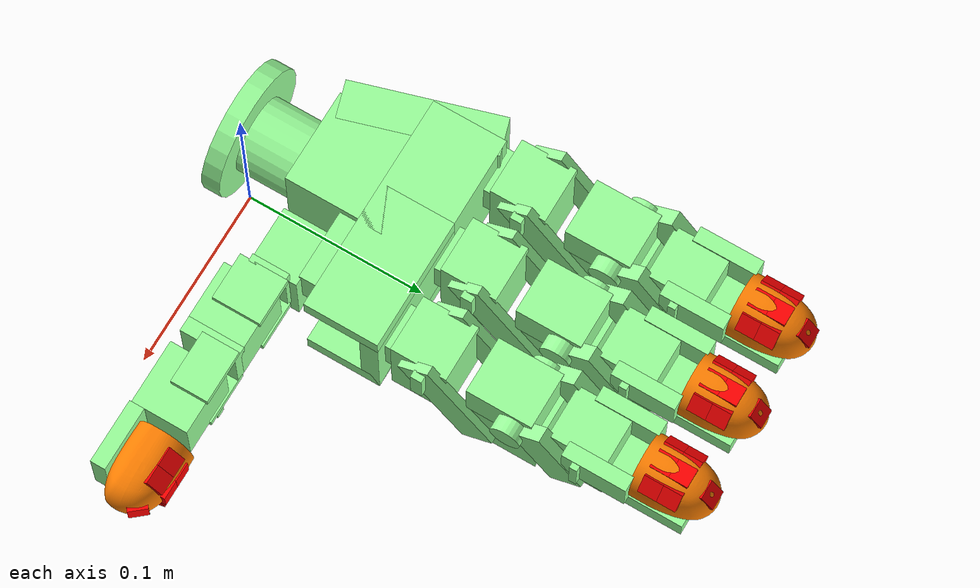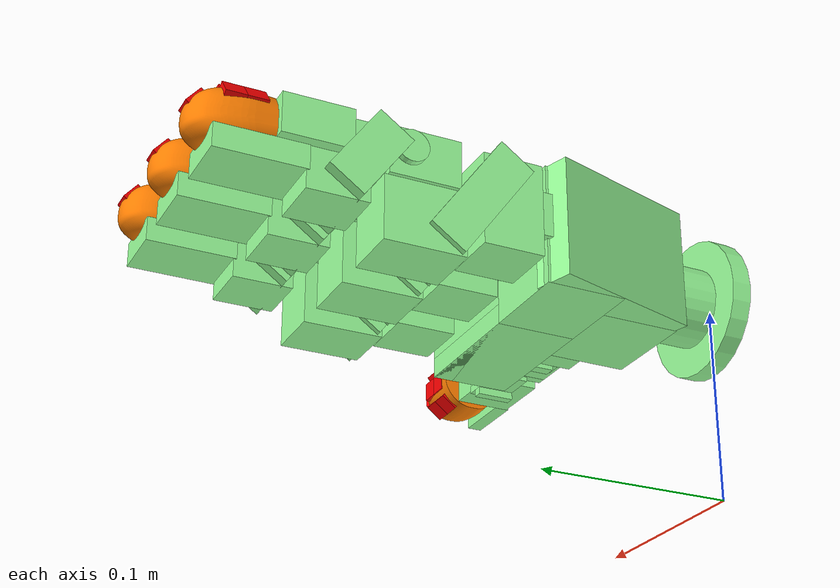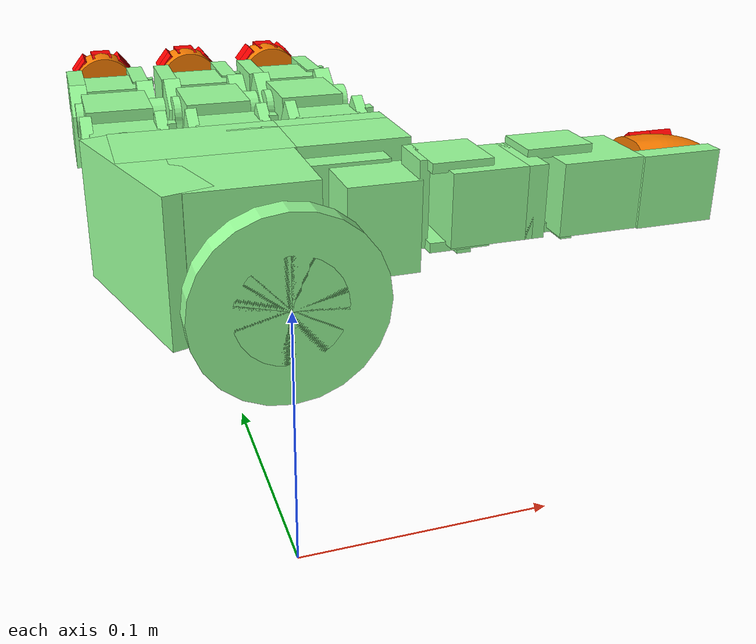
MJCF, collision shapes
<?xml version="1.0" ?>
<!-- Generated using onshape-to-robot -->
<!-- Onshape https://cad.onshape.com/documents/8570a76a8c0c31c84724c6f7/w/72ba6e2072d2b92f117e67a0/e/b5b8d162590c6484df5b91e8 -->
<mujoco model="leapXELA">
  <compiler angle="radian" meshdir="./assets/"/>
  <option integrator="implicitfast" cone="elliptic" impratio="100"/>

  <!-- mesh assets -->
  <asset>
    <material name="black" rgba="0.2 0.2 0.2 1" />
    <material name="col" rgba="0.6 1.0 0.6 0.2" />
    <material name="orange" rgba="1.0 0.5 0.0 0.2" />
    <material name="marker" rgba="1.0 0.0 0.0 1.0" />

    <mesh file="outer_skin_v1_3_1.stl"/>
    <mesh file="thfingertip_unified.stl"/>
    <mesh file="leap_hand_xela_bottom.stl"/>
    <mesh file="p2_unified.stl"/>
    <mesh file="fingertop_unfied.stl"/>
    <mesh file="thp2_unified.stl"/>
    <mesh file="leap_hand_xela_motorholder.stl"/>
    <mesh file="uspa46.stl"/>
    <mesh file="thp0_unified.stl"/>
    <mesh file="p3_unified.stl"/>
    <mesh file="clipper.stl"/>
    <mesh file="thp1_unified.stl"/>
    <mesh file="leap_hand_xela_side_cover.stl"/>
    <mesh file="thconnector.stl"/>
    <mesh file="p5_unified.stl"/>
    <mesh file="top_palm.stl"/>
    <mesh file="p4_unified.stl"/>
    <mesh file="palm_face.stl"/>
    <mesh file="leap_hand_xela_back_cover.stl"/>
  </asset>

  <!-- defaults -->
  <default>
    <!-- constraint stiffness -->
    <geom solimp="0.999 0.999 0.001 0.0001 1" solref="0.0001 1" friction=".2"/>

    <!-- actuator defaults -->
    <position kp="3.0" kv="0.01" />
    <joint damping="0.03" frictionloss="0.001"/>

    <!-- geom class defaults -->
    <default class="visual">
      <geom type="mesh" contype="0" conaffinity="0" group="2"/>
    </default>

    <default class="collision">
      <geom type="box" group="3" material="col"/>
      <default class="sensor_patch">
        <geom rgba ="1 0 0 1" size="0.005 0.005 0.005" group="4"/>
        <!-- Sensor Location Fingertips -->
        <!-- Top Surface -->
        <default class="fingertip_sensor_top_surface_1">
          <geom pos="0.01 -0.035 0.0145" euler="0 0 0" />
        </default>
        <default class="fingertip_sensor_top_surface_2">
          <geom pos="0.0100 -0.045 0.0145" euler="0 0 0" />
        </default>
        <default class="fingertip_sensor_top_surface_3">
          <geom pos="0.004 -0.057 0.0145" euler="0 0 0.7" />
        </default>
        <!-- End:Top Surface -->
        <!-- Left Surface -->
        <default class="fingertip_sensor_left_surface_1">
          <geom pos="0.007 -0.035 0.023" euler="0 -0.9 0" />
        </default>
        <default class="fingertip_sensor_left_surface_2">
          <geom pos="0.007 -0.045 0.023" euler="0 -0.9 0" />
        </default>
        <!-- End:Left Surface -->
        <!-- Right Surface -->
        <default class="fingertip_sensor_right_surface_1">
          <geom pos="0.007 -0.035 0.006" euler="0 0.9 0" />
        </default>
        <default class="fingertip_sensor_right_surface_2">
          <geom pos="0.007 -0.045 0.006" euler="0 0.9 0" />
        </default>
        <!-- End:Right Surface -->
      </default>
    </default>

    <!-- marker defaults-->
    <default class="marker">
      <site size="0.005" pos="-0.004 -0.062 0.015" group="5"/>
    </default>

    <!-- touch grid palm -->
    <default class="uspa46">
      <site group="4" size="0.001" />
    </default>
    <!-- touch grid finger links -->
    <default class="uspa44">
      <site group="4" size="0.001" />
      <default class="bs_uspa44">
        <geom pos="-0.0022 0.005 -0.015"  />
        <site pos="0.0088 0.015 -0.004" />
      </default>
      <default class="px_uspa44">
        <geom pos="0.00 0.012 0.017"  />
        <site pos="0.006 0.020 0.028" />
      </default>
      <default class="md_uspa44">
        <geom pos="0.0322 0.005 -0.015"  />
        <site pos="0.040 0.015 -0.008" />
      </default>

      <default class="th_bs_uspa44">
        <geom pos="0.0 0.004 0.026"/>
        <site pos="0.007 0.015 0.035"/>
      </default>
      <default class="th_px_uspa44">
        <geom pos="-0.004 0.053 0.0145"/>
        <site pos="-0.015 0.0605 0.008"/>
      </default>
       <!-- Construction lines for fingertips -->
       <!-- Vertical Construction Line -->
       <default class="construction_line_0">
        <site pos="0.015 -0.025 0.0145"  />
       </default>
       <default class="construction_line_1">
        <site pos="0.015 -0.030 0.0145" />
       </default>
       <default class="construction_line_2">
        <site pos="0.015 -0.035 0.0145" />
       </default>
       <default class="construction_line_3">
        <site pos="0.0148 -0.040 0.0145" />
       </default>
       <default class="construction_line_4">
        <site pos="0.0142 -0.045 0.0145"/>
       </default>
       <default class="construction_line_5">
        <site pos="0.0134 -0.050 0.0145" />
       </default>
       <default class="construction_line_6">
        <site pos="0.0115 -0.055 0.0145"  />
       </default>
       <default class="construction_line_7">
        <site pos="0.008 -0.060 0.0145"  />
       </default>
       <default class="construction_line_8">
        <site  pos="0.004 -0.063 0.0145" />
       </default>
       <default class="construction_line_9">
        <site pos="-0.002 -0.0645 0.0145"/>
       </default>
       <!-- Horizontal Construction Line One -->
      <default class="h1_construction_line_1">
        <site pos="0.014 -0.035 0.02" />
      </default>
      <default class="h1_construction_line_2">
        <site pos="0.011 -0.035 0.025" />
      </default>
      <default class="h1_construction_line_3">
        <site pos="0.005 -0.035 0.029" />
      </default>
      <default class="h1_construction_line_4">
        <site pos="0.00 -0.035 0.03" />
      </default>

      <default class="h1_construction_line_5">
        <site pos="0.014 -0.035 0.008" />
      </default>
      <default class="h1_construction_line_6">
        <site pos="0.011 -0.035 0.004" />
      </default>
      <default class="h1_construction_line_7">
        <site pos="0.005 -0.035 0.000" />
      </default>
      <default class="h1_construction_line_8">
        <site pos="0.00 -0.035 -0.001" />
      </default>
      <!-- Horizontal Construction Line Two -->
      <default class="h2_construction_line_1">
        <site pos="0.013 -0.045 0.02" />
      </default>
      <default class="h2_construction_line_2">
        <site pos="0.01 -0.045 0.025" />
      </default>
      <default class="h2_construction_line_3">
        <site pos="0.002 -0.045 0.029" />
      </default>

      <default class="h2_construction_line_4">
        <site pos="0.013 -0.045 0.008" />
      </default>
      <default class="h2_construction_line_5">
        <site pos="0.01 -0.045 0.004" />
      </default>
      <default class="h2_construction_line_6">
        <site pos="0.002 -0.045 -0.0001" />
      </default>
    </default>

     <!-- touch grid fingertips -->
    <default class="uSCuALHA">
      <geom  group="3" type="mesh" mesh="outer_skin_v1_3_1" pos="-0.0009 -0.025 0.0145"
               euler="-1.57 0 -1.57" friction="0.5" material="orange" />
      <site group="4" pos="0.014 -0.045 0.015" size="0.001" />
    </default>

     <!-- joint class defaults -->
    <default class="mcp">
      <joint pos="0 0 0" axis="0 0 1"
        limited="true" range="-0.314 2.23" />
      <position ctrlrange="-0.314 2.23" />
    </default>
    <default class="rot">
      <joint pos="0 0 0" axis="0 0 1"
        limited="true" range="-1.047 1.047" />
      <position ctrlrange="-1.047 1.047" />
    </default>
    <default class="pip">
      <joint pos="0 0 0" axis="0 0 1"
        limited="true" range="-0.506 1.885" />
      <position ctrlrange="-0.506 1.885" />
    </default>
    <default class="dip">
      <joint pos="0 0 0" axis="0 0 1"
        limited="true" range="-0.366 2.042" />
      <position ctrlrange="-0.366 2.042" />
    </default>
    <default class="thumb_cmc">
      <joint pos="0 0 0" axis="0 0 1"
        limited="true" range="-0.349 2.094" />
      <position ctrlrange="-0.349 2.094" />
    </default>
    <default class="thumb_axl">
      <joint pos="0 0 0" axis="0 0 1"
        limited="true" range="-0.349 2.094" />
      <position ctrlrange="-0.349 2.094" />
    </default>
    <default class="thumb_mcp">
      <joint pos="0 0 0" axis="0 0 1"
        limited="true" range="-0.47 2.443" />
      <position ctrlrange="-0.47 2.443" />
    </default>
    <default class="thumb_ipl">
      <joint pos="0 0 0" axis="0 0 1"
        limited="true" range="-1.34 1.88" />
      <position ctrlrange="-1.34 1.88" />
    </default>
  </default>

  <!-- collision filtering -->
  <contact>
    <exclude body1="palm" body2="if_bs" />
    <exclude body1="palm" body2="mf_bs" />
    <exclude body1="palm" body2="rf_bs" />
    <exclude body1="palm" body2="th_mp" />

    <exclude body1="palm" body2="if_px" />
    <exclude body1="palm" body2="mf_px" />
    <exclude body1="palm" body2="rf_px" />
    <exclude body1="palm" body2="th_bs" />

    <exclude body1="palm" body2="if_md" />
    <exclude body1="palm" body2="mf_md" />
    <exclude body1="palm" body2="rf_md" />
    <exclude body1="palm" body2="th_px" />

    <exclude body1="if_bs" body2="mf_bs" />
    <exclude body1="if_bs" body2="rf_bs" />
    <exclude body1="mf_bs" body2="rf_bs" />

    <exclude body1="th_mp" body2="if_bs" />
    <exclude body1="th_mp" body2="mf_bs" />
    <exclude body1="th_mp" body2="rf_bs" />

    <exclude body1="if_md" body2="if_bs" />
    <exclude body1="mf_md" body2="mf_bs" />
    <exclude body1="rf_md" body2="rf_bs" />
  </contact>

  <!-- actuators -->
  <actuator>
    <!-- index -->
    <position  name="if_mcp_act" joint="if_mcp" class="mcp"/>
    <position  name="if_rot_act" joint="if_rot" class="rot"/>
    <position  name="if_pip_act" joint="if_pip" class="pip"/>
    <position  name="if_dip_act" joint="if_dip" class="dip"/>

    <!-- middle -->
    <position name="mf_mcp_act" joint="mf_mcp" class="mcp"/>
    <position name="mf_rot_act" joint="mf_rot" class="rot"/>
    <position name="mf_pip_act" joint="mf_pip" class="pip"/>
    <position name="mf_dip_act" joint="mf_dip" class="dip"/>

    <!-- ring  -->
    <position name="rf_mcp_act" joint="rf_mcp" class="mcp"/>
    <position name="rf_rot_act" joint="rf_rot" class="rot"/>
    <position name="rf_pip_act" joint="rf_pip" class="pip"/>
    <position name="rf_dip_act" joint="rf_dip" class="dip"/>

    <!-- thumb -->
    <position name="th_cmc_act" joint="th_cmc" class="thumb_cmc"/>
    <position name="th_axl_act" joint="th_axl" class="thumb_axl"/>
    <position name="th_mcp_act" joint="th_mcp" class="thumb_mcp"/>
    <position name="th_ipl_act" joint="th_ipl" class="thumb_ipl"/>
  </actuator>

  <!-- sensors -->
  <sensor>

    <!-- index -->
    <jointpos name="if_mcp_sensor" joint="if_mcp" />
    <jointpos name="if_rot_sensor" joint="if_rot" />
    <jointpos name="if_pip_sensor" joint="if_pip" />
    <jointpos name="if_dip_sensor" joint="if_dip" />

    <!-- middle -->
    <jointpos name="mf_mcp_sensor" joint="mf_mcp" />
    <jointpos name="mf_rot_sensor" joint="mf_rot" />
    <jointpos name="mf_pip_sensor" joint="mf_pip" />
    <jointpos name="mf_dip_sensor" joint="mf_dip" />

    <!-- ring -->
    <jointpos name="rf_mcp_sensor" joint="rf_mcp" />
    <jointpos name="rf_rot_sensor" joint="rf_rot" />
    <jointpos name="rf_pip_sensor" joint="rf_pip" />
    <jointpos name="rf_dip_sensor" joint="rf_dip" />

    <!-- thumb -->
    <jointpos name="th_cmc_sensor" joint="th_cmc" />
    <jointpos name="th_axl_sensor" joint="th_axl" />
    <jointpos name="th_mcp_sensor" joint="th_mcp" />
    <jointpos name="th_ipl_sensor" joint="th_ipl" />

  </sensor>

  <worldbody>
    <body name="palm" pos="0 0 0.1" quat="1 -1 0  0" >
      <!-- palm -->
      <inertial pos="0.00388456 -0.00321858 0.0893448" mass="0.237" fullinertia="0.00587523 0.00767916 0.00348841 9.4314e-05 -0.000410847 0.00018544"/>
      <geom name="palm_visual_1" class="visual" pos="0.0180627 0.023 0.0834096" quat="7.73061e-18 0.707107 0 -0.707107" mesh="leap_hand_xela_motorholder" material="black"/>
      <geom name="palm_visual_2" class="visual" pos="-0.005515 -0.027 0.0631" quat="1.11022e-16 -2.02699e-16 -1.11022e-16 -1" mesh="uspa46" material="black"/>
      <geom name="palm_visual_3" class="visual" pos="0.0235627 -0.013 0.0845" quat="0.707107 -3.84621e-15 -3.66374e-15 0.707107" mesh="thp0_unified" material="black"/>
      <geom name="palm_visual_4" class="visual" pos="-0.03767 -0.009 0.1306" quat="0.5 0.5 -0.5 0.5" mesh="p5_unified" material="black"/>
      <geom name="palm_visual_5" class="visual" pos="0.00785 -0.023 0.123706" quat="5.44009e-15 -4.77641e-18 1 -1.9082e-16" mesh="top_palm" material="black"/>
      <geom name="palm_visual_6" class="visual" pos="0.00778 -0.009 0.1306" quat="0.5 0.5 -0.5 0.5" mesh="p5_unified" material="black"/>
      <geom name="palm_visual_7" class="visual" pos="-0.005515 -0.027 0.0962" quat="1.11022e-16 -2.02699e-16 -1.11022e-16 -1" mesh="uspa46" material="black"/>
      <geom name="palm_visual_8" class="visual" pos="0.05323 -0.009 0.1306" quat="0.5 0.5 -0.5 0.5" mesh="p5_unified" material="black"/>
      <geom name="palm_visual_9" class="visual" pos="0.044015 -0.027 0.0962" quat="1.04466e-17 -1 4.83299e-17 2.02699e-16" mesh="uspa46" material="black"/>
      <geom name="palm_visual_10" class="visual" pos="-0.0293149 0.023 0.131221" quat="0.707107 -2.32148e-18 -0.707107 0" mesh="leap_hand_xela_back_cover" material="black"/>
      <geom name="palm_visual_11" class="visual" pos="-0.0503368 1.249e-16 0.110009" quat="0.707104 0.707104 0.00183435 -0.00183435" mesh="leap_hand_xela_side_cover" material="black"/>
      <geom name="palm_visual_12" class="visual" pos="0 -0.023 0.0425" quat="0 0 -1 -1.66533e-16" mesh="leap_hand_xela_bottom" material="black"/>
      <geom name="palm_visual_13" class="visual" pos="-0.0283776 -0.029 0.131221" quat="0.707107 -2.32148e-18 -0.707107 0" mesh="palm_face" material="black"/>

      <geom name="palm_collision_1" class="collision" pos="-0.038 -0.002 0.14" euler="0 0 0" size="0.015 0.023 0.015" />
      <geom name="palm_collision_3" class="collision" pos="0.00745 -0.002 0.14" euler="0 0 0" size="0.015 0.023 0.015" />
      <geom name="palm_collision_5" class="collision" pos="0.0529 -0.002 0.14" euler="0 0 0" size="0.015 0.023 0.015" />
      <geom name="palm_collision_7" class="collision" pos="-0.012 0 0.1" size="0.035 0.03 0.02"/>
      <geom name="palm_collision_8" class="collision" pos="-0.003 0 0.06" size="0.025 0.03 0.02"/>
      <geom name="palm_collision_9" class="collision" pos="-0.037 0 0.08" euler="0 1.28 0" size="0.04 0.03 0.01"/>
      <geom name="palm_collision_10" class="collision" pos="0.036 -0.025 0.1" size="0.035 0.005 0.02"/>
      <geom name="palm_collision_11" class="collision" pos="0.036 0.025 0.1" size="0.035 0.005 0.02"/>
      <geom name="palm_collision_12" class="collision" pos="0.036 0 0.115" size="0.035 0.03 0.005"/>
      <geom name="palm_collision_13" class="collision" pos="0.039 -0.013 0.085" euler="0 0 0" size="0.02 0.012  0.015" />

      <geom name="palm_collision_17" class="collision" type="cylinder" pos="0 0 0.02" size="0.02 0.02"/>
      <geom name="palm_collision_18" class="collision" type="cylinder" pos="0 0 0.005" size="0.035 0.005"/>
      <geom name="palm_collision_19" class="collision" pos="0.0529 -0.003 0.12" euler="0 0 0" size="0.012 0.011 0.005" />
      <geom name="palm_collision_20" class="collision" pos="0.008 -0.003 0.12" euler="0 0 0" size="0.012 0.011 0.005" />
      <geom name="palm_collision_21" class="collision" pos="-0.0375 -0.003 0.12" euler="0 0 0" size="0.012 0.011 0.005" />

      <!-- palm touch sensors -->
      <site name="uspa46_1" class="uspa46" pos="0.013 -0.032 0.107"/>
      <site name="uspa46_2" class="uspa46" pos="0.061 -0.032 0.107"/>
      <site name="uspa46_3" class="uspa46" pos="0.013 -0.032 0.074"/>

      <site name="if_bs_uspa44" class="bs_uspa44" pos="0.015 -0.032 0.149" />
      <site name="mf_bs_uspa44" class="bs_uspa44" pos="0.059 -0.032 0.149" />
      <site name="rf_bs_uspa44" class="bs_uspa44" pos="-0.03 -0.032 0.149" />

      <!--index-->
      <body name="if_bs" pos="0.06773 -0.0165 0.1436" quat="4.51379e-17 0.707107 -0 0.707107">
        <joint  name="if_mcp" class="mcp"/>
        <inertial pos="0.0342889 -0.0265621 -0.0145004" mass="0.044" fullinertia="4.51947e-05 6.85417e-05 7.22479e-05 1.48097e-05 1.17419e-06 -1.19534e-06"/>
        <geom name="if_bs_visual" class="visual" pos="0.0048 -6.93889e-18 -0.0145" quat="0.5 0.5 0.5 -0.5" mesh="p4_unified" material="black"/>
        <geom name="if_bs_collision_1" class="collision" pos="0.013 -0.016 0.0015" euler="0 0 -0.95" size="0.03 0.01 0.0025" />
        <geom name="if_bs_collision_2" class="collision" pos="-0.0005 -0.0 0.0055" euler="0 0 0" size="0.003 0.01 0.002" />
        <geom name="if_bs_collision_3" class="collision" pos="0.013 -0.016 -0.0305" euler="0 0 -0.95" size="0.03 0.01 0.0025" />
        <geom name="if_bs_collision_4" class="collision" pos="0.04 -0.031 -0.015" euler="0 0 0.0" size="0.02 0.016 0.015" />

        <body name="if_px" pos="0.0326 -0.0123 -0.0145" quat="0.5 -0.5 -0.5 -0.5">
          <joint  name="if_rot" class="rot"/>
          <inertial pos="-0.000258994 0.00848001 0.0133488" mass="0.032" fullinertia="2.31878e-05 1.74843e-05 2.31495e-05 -1.07668e-07 -9.95794e-08 -1.12128e-06"/>
          <geom name="if_px_visual" class="visual" pos="0 0.0075 -8.67362e-19" quat="0.5 -0.5 -0.5 -0.5" mesh="p3_unified" material="black"/>
          <geom name="if_px_collision_1" class="collision" pos="0.0 0.0072 0.011" euler="0 0 0.0" size="0.015 0.0175 0.012" />
          <site name="if_px_uspa44" class="px_uspa44"/>

          <body name="if_md" pos="0.0145 0.015 0.013" quat="0.5 0.5 0.5 0.5">
            <joint  name="if_pip" class="pip"/>
            <inertial pos="0.0304899 -0.00688132 -0.0146269" mass="0.037" fullinertia="5.30625e-05 4.56759e-05 5.89736e-05 3.70526e-06 1.23454e-06 -6.30317e-07"/>
            <geom name="if_md_visual" class="visual" pos="0.00905 -6.93889e-18 -0.0145" quat="0.5 0.5 0.5 -0.5" mesh="p2_unified" material="black"/>
            <geom name="if_md_collision_1" class="collision" pos="0.02 -0.009 0.0015" euler="0 0 -0.95" size="0.02 0.01 0.004" />
            <geom name="if_md_collision_2" class="collision" type="cylinder" pos="0.0 0 0.0035" size="0.008 0.005 " />
            <geom name="if_md_collision_3" class="collision" pos="0.02 -0.009 -0.0305" euler="0 0 -0.95" size="0.02 0.01 0.004" />
            <geom name="if_md_collision_4" class="collision" type="cylinder" pos="0.0 0 -0.03" size="0.008 0.003 " />
            <geom name="if_md_collision_5" class="collision" pos="0.033 -0.011 -0.0145" euler="0 0 0" size="0.015 0.02 0.014" />
            <site name="if_md_uspa44" class="md_uspa44"/>

            <body name="if_ds" pos="0.0361 -1.11022e-16 -0.0291" quat="0.707107 -2.30991e-16 4.44089e-16 0.707107">
              <joint  name="if_dip" class="dip"/>
              <inertial pos="-0.00193531 -0.0359351 0.0145854" mass="0.016" fullinertia="7.05202e-05 3.63661e-05 6.58529e-05 1.03034e-06 -1.87024e-07 -1.07782e-06"/>
              <geom class="visual" pos="-0.00135925 -0.025 0.0145" quat="0.5 -0.5 -0.5 -0.5" mesh="fingertop_unfied" material="black"/>
              <geom name="if_ds_collision_1" class="collision" pos="0.0 -0.009 -0.001" euler="0 0 1.57" size="0.017 0.01 0.004" />
              <geom name="if_ds_collision_2" class="collision" pos="0.0 -0.009  0.03"  euler="0 0 1.57" size="0.017 0.01 0.004" />
              <geom name="if_ds_collision_3" class="collision" pos="-0.0005 0.0 0.035" euler="0 0 0" size="0.01 0.002 0.002" />
              <geom name="if_ds_collision_4" class="collision" pos="-0.016 -0.0325 0.015" euler="0 0 0" size="0.006 0.022 0.015" />

              <geom name="if_ds_tip" class="uSCuALHA" />

               <!-- center line-->
              <site name="if_uSCuALHA_construction_line_0" class="construction_line_0" />
              <site name="if_uSCuALHA_construction_line_1" class="construction_line_1" />
              <site name="if_uSCuALHA_construction_line_2" class="construction_line_2" />
              <site name="if_uSCuALHA_construction_line_3" class="construction_line_3" />
              <site name="if_uSCuALHA_construction_line_4" class="construction_line_4" />
              <site name="if_uSCuALHA_construction_line_5" class="construction_line_5" />
              <site name="if_uSCuALHA_construction_line_6" class="construction_line_6" />
              <site name="if_uSCuALHA_construction_line_7" class="construction_line_7" />
              <site name="if_uSCuALHA_construction_line_8" class="construction_line_8" />
              <site name="if_uSCuALHA_construction_line_9" class="construction_line_9" />
              <!-- End::center line-->
              <!-- Horizontal Construction line 1 -->
              <site name="if_uSCuALHA_h1_construction_line_1" class="h1_construction_line_1" />
              <site name="if_uSCuALHA_h1_construction_line_2" class="h1_construction_line_2" />
              <site name="if_uSCuALHA_h1_construction_line_3" class="h1_construction_line_3" />
              <site name="if_uSCuALHA_h1_construction_line_4" class="h1_construction_line_4" />
              <site name="if_uSCuALHA_h1_construction_line_5" class="h1_construction_line_5" />
              <site name="if_uSCuALHA_h1_construction_line_6" class="h1_construction_line_6" />
              <site name="if_uSCuALHA_h1_construction_line_7" class="h1_construction_line_7" />
              <site name="if_uSCuALHA_h1_construction_line_8" class="h1_construction_line_8" />
              <!-- End:Horizontal Construction line 1-->
              <!-- Horizontal Construction line 2 -->
              <site name="if_uSCuALHA_h2_construction_line_1" class="h2_construction_line_1" />
              <site name="if_uSCuALHA_h2_construction_line_2" class="h2_construction_line_2" />
              <site name="if_uSCuALHA_h2_construction_line_3" class="h2_construction_line_3" />
              <site name="if_uSCuALHA_h2_construction_line_4" class="h2_construction_line_4" />
              <site name="if_uSCuALHA_h2_construction_line_5" class="h2_construction_line_5" />
              <site name="if_uSCuALHA_h2_construction_line_6" class="h2_construction_line_6" />
              <!-- End:Horizontal Construction line 2-->

              <!-- Sensors -->
              <geom name="=if_fingertip_sensor_top_surface_1" class="fingertip_sensor_top_surface_1"/>
              <geom name="=if_fingertip_sensor_top_surface_2" class="fingertip_sensor_top_surface_2"/>
              <geom name="=if_fingertip_sensor_top_surface_3" class="fingertip_sensor_top_surface_3"/>
              <geom name="=if_fingertip_sensor_left_surface_1" class="fingertip_sensor_left_surface_1"/>
              <geom name="=if_fingertip_sensor_left_surface_2" class="fingertip_sensor_left_surface_2"/>
              <geom name="=if_fingertip_sensor_right_surface_1" class="fingertip_sensor_right_surface_1"/>
              <geom name="=if_fingertip_sensor_right_surface_2" class="fingertip_sensor_right_surface_2"/>
              <!-- End:Sensors -->

            </body>
          </body>
        </body>
      </body>
      <!--index-->

      <!--middle-->
      <body name="mf_bs" pos="0.02228 -0.0165 0.1436" quat="4.51379e-17 0.707107 -0 0.707107">
        <joint  name="mf_mcp" class="mcp"/>
        <inertial pos="0.0342889 -0.0265621 -0.0145004" mass="0.044" fullinertia="4.51947e-05 6.85417e-05 7.22479e-05 1.48097e-05 1.17419e-06 -1.19534e-06"/>
        <geom name="mf_bs_visual" class="visual" pos="0.0048 -3.46945e-18 -0.0145" quat="0.5 0.5 0.5 -0.5" mesh="p4_unified" material="black"/>
        <geom name="mf_bs_collision_1" class="collision" pos="0.013 -0.016 0.0015" euler="0 0 -0.95" size="0.03 0.01 0.0025" />
        <geom name="mf_bs_collision_2" class="collision" pos="-0.0005 -0.0 0.0055" euler="0 0 0" size="0.003 0.01 0.002" />
        <geom name="mf_bs_collision_3" class="collision" pos="0.013 -0.016 -0.0305" euler="0 0 -0.95" size="0.03 0.01 0.0025" />
        <geom name="mf_bs_collision_4" class="collision" pos="0.04 -0.031 -0.015" euler="0 0 0.0" size="0.02 0.016 0.015" />
        <body name="mf_px" pos="0.0326 -0.0123 -0.0145" quat="0.5 -0.5 -0.5 -0.5">
          <joint  name="mf_rot" class="rot"/>
          <inertial pos="-0.000258994 0.00848001 0.0133488" mass="0.032" fullinertia="2.31878e-05 1.74843e-05 2.31495e-05 -1.07668e-07 -9.95794e-08 -1.12128e-06"/>
          <geom name="mf_px_visual"  type="mesh" class="visual" pos="-8.67362e-19 0.0075 -8.67362e-19" quat="0.5 -0.5 -0.5 -0.5" mesh="p3_unified" material="black"/>
          <geom name="mf_px_collision_1" class="collision" size="0.015 0.0175 0.012" pos="0 0.0072 0.011"/>
          <site name="mf_px_uspa44" class="px_uspa44"/>

          <body name="mf_md" pos="0.0145 0.015 0.013" quat="0.5 0.5 0.5 0.5">
            <joint  name="mf_pip" class="pip"/>
            <inertial pos="0.0304899 -0.00688132 -0.0146269" mass="0.037" fullinertia="5.30625e-05 4.56759e-05 5.89736e-05 3.70526e-06 1.23454e-06 -6.30317e-07"/>
            <geom name="mf_md_visual" class="visual" pos="0.00905 -1.04083e-17 -0.0145" quat="0.5 0.5 0.5 -0.5" mesh="p2_unified" material="black"/>
            <geom name="mf_md_collision_1" class="collision" pos="0.02 -0.009 0.0015" euler="0 0 -0.95" size="0.02 0.01 0.004" />
            <geom name="mf_md_collision_2" class="collision" type="cylinder" pos="0.0 0 0.0035" size="0.008 0.005 " />
            <geom name="mf_md_collision_3" class="collision" pos="0.02 -0.009 -0.0305" euler="0 0 -0.95" size="0.02 0.01 0.004" />
            <geom name="mf_md_collision_4" class="collision" type="cylinder" pos="0.0 0 -0.03" size="0.008 0.003 " />
            <geom name="mf_md_collision_5" class="collision" pos="0.033 -0.011 -0.0145" euler="0 0 0" size="0.015 0.02 0.014" />
            <site name="mf_md_uspa44" class="md_uspa44"/>

            <body name="mf_ds" pos="0.0361 -1.14492e-16 -0.0291" quat="0.707107 -2.30991e-16 4.44089e-16 0.707107">
              <joint  name="mf_dip" class="dip"/>
              <inertial pos="-0.00193531 -0.0359351 0.0145854" mass="0.016" fullinertia="7.05202e-05 3.63661e-05 6.58529e-05 1.03034e-06 -1.87024e-07 -1.07782e-06"/>
              <geom name="mf_ds_visual" class="visual" pos="-0.00135925 -0.025 0.0145" quat="0.5 -0.5 -0.5 -0.5" mesh="fingertop_unfied" material="black"/>
              <geom name="mf_ds_collision_1" class="collision" pos="0.0 -0.009 -0.001" euler="0 0 1.57" size="0.017 0.01 0.004" />
              <geom name="mf_ds_collision_2" class="collision" pos="0.0 -0.009  0.03"  euler="0 0 1.57" size="0.017 0.01 0.004" />
              <geom name="mf_ds_collision_3" class="collision" pos="-0.0005 0.0 0.035" euler="0 0 0" size="0.01 0.002 0.002" />
              <geom name="mf_ds_collision_4" class="collision" pos="-0.016 -0.0325 0.015" euler="0 0 0" size="0.006 0.022 0.015" />

               <!-- Sensors -->
              <geom name="mf_fingertip_sensor_top_surface_1" class="fingertip_sensor_top_surface_1"/>
              <geom name="mf_fingertip_sensor_top_surface_2" class="fingertip_sensor_top_surface_2"/>
              <geom name="mf_fingertip_sensor_top_surface_3" class="fingertip_sensor_top_surface_3"/>
              <geom name="mf_fingertip_sensor_left_surface_1" class="fingertip_sensor_left_surface_1"/>
              <geom name="mf_fingertip_sensor_left_surface_2" class="fingertip_sensor_left_surface_2"/>
              <geom name="mf_fingertip_sensor_right_surface_1" class="fingertip_sensor_right_surface_1"/>
              <geom name="mf_fingertip_sensor_right_surface_2" class="fingertip_sensor_right_surface_2"/>
              <!-- End:Sensors -->

              <geom name="mf_ds_tip" class="uSCuALHA"/>
            </body>
          </body>
        </body>
      </body> <!--middle-->

      <!--ring-->
      <body name="rf_bs" pos="-0.02317 -0.0165 0.1436" quat="4.51379e-17 0.707107 -0 0.707107">
        <joint  name="rf_mcp" class="mcp"/>
        <inertial pos="0.0342889 -0.0265621 -0.0145004" mass="0.044" fullinertia="4.51947e-05 6.85417e-05 7.22479e-05 1.48097e-05 1.17419e-06 -1.19534e-06"/>
        <geom name="rf_bs_visual" class="visual" pos="0.0048 -6.93889e-18 -0.0145" quat="0.5 0.5 0.5 -0.5" mesh="p4_unified" material="black"/>
        <geom name="rf_bs_collision_1" class="collision" pos="0.013 -0.016 0.0015" euler="0 0 -0.95" size="0.03 0.01 0.0025" />
        <geom name="rf_bs_collision_2" class="collision" pos="-0.0005 -0.0 0.0055" euler="0 0 0" size="0.003 0.01 0.002" />
        <geom name="rf_bs_collision_3" class="collision" pos="0.013 -0.016 -0.0305" euler="0 0 -0.95" size="0.03 0.01 0.0025" />
        <geom name="rf_bs_collision_4" class="collision" pos="0.04 -0.031 -0.015" euler="0 0 0.0" size="0.02 0.016 0.015" />

        <body name="rf_px" pos="0.0326 -0.0123 -0.0145" quat="0.5 -0.5 -0.5 -0.5">
          <joint  name="rf_rot" class="rot"/>
          <inertial pos="-0.000258994 0.00848001 0.0133488" mass="0.032" fullinertia="2.31878e-05 1.74843e-05 2.31495e-05 -1.07668e-07 -9.95794e-08 -1.12128e-06"/>
          <geom name="rf_px_visual" class="visual" pos="0 0.0075 -8.67362e-19" quat="0.5 -0.5 -0.5 -0.5"
          mesh="p3_unified" material="black"/>
          <geom name="rf_px_collision_1" class="collision" pos="0.0 0.0072 0.011" euler="0 0 0.0" size="0.015 0.0175 0.012" />
          <site name="rf_px_uspa44" class="px_uspa44"/>

          <body name="rf_md" pos="0.0145 0.015 0.013" quat="0.5 0.5 0.5 0.5">
            <joint  name="rf_pip" class="pip"/>
            <inertial pos="0.0304899 -0.00688132 -0.0146269" mass="0.037" fullinertia="5.30625e-05 4.56759e-05 5.89736e-05 3.70526e-06 1.23454e-06 -6.30317e-07"/>
            <geom name="rf_md_visual" class="visual" pos="0.00905 -6.93889e-18 -0.0145" quat="0.5 0.5 0.5 -0.5"
            mesh="p2_unified" material="black"/>
            <geom name="rf_md_collision_1" class="collision" pos="0.02 -0.009 0.0015" euler="0 0 -0.95" size="0.02 0.01 0.004" />
            <geom name="rf_md_collision_2" class="collision" type="cylinder" pos="0.0 0 0.0035" size="0.008 0.005 " />
            <geom name="rf_md_collision_3" class="collision" pos="0.02 -0.009 -0.0305" euler="0 0 -0.95" size="0.02 0.01 0.004" />
            <geom name="rf_md_collision_4" class="collision" type="cylinder" pos="0.0 0 -0.03" size="0.008 0.003 " />
            <geom name="rf_md_collision_5" class="collision" pos="0.033 -0.011 -0.0145" euler="0 0 0" size="0.015 0.02 0.014" />
            <site name="rf_md_uspa44" class="md_uspa44"/>

            <body name="rf_ds" pos="0.0361 -1.11022e-16 -0.0291" quat="0.707107 -2.30991e-16 4.44089e-16 0.707107">
              <joint  name="rf_dip" class="dip"/>
              <inertial pos="-0.00193531 -0.0359351 0.0145854" mass="0.016" fullinertia="7.05202e-05 3.63661e-05 6.58529e-05 1.03034e-06 -1.87024e-07 -1.07782e-06"/>
              <geom name="rf_ds_visual" class="visual" pos="-0.00135925 -0.025 0.0145" quat="0.5 -0.5 -0.5 -0.5"
              mesh="fingertop_unfied" material="black"/>
              <geom name="rf_ds_collision_1" class="collision" pos="0.0 -0.009 -0.001" euler="0 0 1.57" size="0.017 0.01 0.004" />
              <geom name="rf_ds_collision_2" class="collision" pos="0.0 -0.009  0.03"  euler="0 0 1.57" size="0.017 0.01 0.004" />
              <geom name="rf_ds_collision_3" class="collision" pos="-0.0005 0.0 0.035" euler="0 0 0" size="0.01 0.002 0.002" />
              <geom name="rf_ds_collision_4" class="collision" pos="-0.016 -0.0325 0.015" euler="0 0 0" size="0.006 0.022 0.015" />

              <!-- Sensors -->
              <geom name="rf_fingertip_sensor_top_surface_1" class="fingertip_sensor_top_surface_1"/>
              <geom name="rf_fingertip_sensor_top_surface_2" class="fingertip_sensor_top_surface_2"/>
              <geom name="rf_fingertip_sensor_top_surface_3" class="fingertip_sensor_top_surface_3"/>
              <geom name="rf_fingertip_sensor_left_surface_1" class="fingertip_sensor_left_surface_1"/>
              <geom name="rf_fingertip_sensor_left_surface_2" class="fingertip_sensor_left_surface_2"/>
              <geom name="rf_fingertip_sensor_right_surface_1" class="fingertip_sensor_right_surface_1"/>
              <geom name="rf_fingertip_sensor_right_surface_2" class="fingertip_sensor_right_surface_2"/>
              <!-- End:Sensors -->

              <geom name="rf_ds_tip" class="uSCuALHA"/>

            </body>
          </body>
        </body>
      </body> <!--ring-->

      <!--thumb-->
      <body name="th_mp" pos="0.0480627 -0.013 0.07" quat="5.44009e-15 1.1935e-16 1 -5.55112e-17">
        <joint name="th_cmc" class="thumb_cmc"/>
        <inertial pos="-0.000232587 0.00882444 0.0117326" mass="0.032"
        fullinertia="2.37871e-05 1.73561e-05 2.83432e-05 1.34767e-07 5.50367e-08 -9.6937e-08"/>
        <geom name="th_mp_visual" class="visual" pos="0 0.0075 0" quat="0.5 -0.5 -0.5 -0.5" mesh="thp2_unified" material="black"/>
        <geom name="th_mp_collision" class="collision" pos="0 0.0085 0.0115" euler="0 0 0" size="0.015 0.019 0.0125" />

        <body name="th_bs" pos="-0.0144 -8.32667e-17 0.013" quat="0.5 -0.5 -0.5 0.5">
          <joint  name="th_axl" class="thumb_axl"/>
          <inertial pos="0 0 0" mass="0.003" fullinertia="2.88391e-06 7.74614e-06 7.38912e-06 -3.01753e-08 -3.03989e-07 2.92826e-08"/>
          <geom name="th_bs_visual_1" class="visual" pos="-0.0173 0 0.019" quat="0.707107 0.707107 -0 -0" mesh="thconnector" material="black"/>
          <geom name="th_bs_visual_2" class="visual" pos="0.0155 -0.006 0.019" quat="1.85719e-15 -0.707107 -0.707107 2.14491e-15" mesh="clipper" material="black"/>
          <geom name="th_bs_collision_1" class="collision" pos="0.016 -0.002 0.015" euler="0 0 0" size="0.002 0.013 0.0125" />
          <geom name="th_bs_collision_2" class="collision" pos="-0.016 -0.002 0.015" euler="0 0 0" size="0.002 0.013 0.0125" />
          <geom name="th_bs_collision_3" class="collision" pos="0 0 0.0015" euler="0 0 0" size="0.018 0.01 0.002" />
          <geom name="th_bs_collision_4" class="collision" pos="0.02 0.0 0.019" euler="0 0 0" size="0.002 0.01 0.003" />
          <site name="th_bs_uspa44" class="th_bs_uspa44"/>

          <body name="th_px" pos="0.0145 -3.46945e-18 0.019" quat="0.5 0.5 -0.5 -0.5">
            <joint name="th_mcp" class="thumb_mcp"/>
            <inertial pos="0.00144426 0.0112332 0.0144179" mass="0.038"
            fullinertia="5.2272e-05 3.20647e-05 5.08966e-05 5.30483e-07 -6.26679e-07 9.36463e-07"/>
            <geom name="th_px_visual_1" class="visual" pos="-1.11022e-16 0.0245 0.0145" quat="1 0 -2.22045e-16 0" mesh="thp1_unified" material="black"/>
            <geom name="th_px_collision_1" class="collision" pos="0.005 0.007 0.0145" euler="0 0 0" size="0.015 0.017 0.015" />
            <geom name="th_px_collision_2" class="collision" pos="0.005 0.025 0.0145" euler="0 0 0" size="0.015 0.004 0.015" />
            <geom name="th_px_collision_3" class="collision" pos="0.0 0.039 -0.001" euler="0 0 0" size="0.01 0.014 0.002" />
            <geom name="th_px_collision_4" class="collision" pos="0.0 0.045 -0.005" euler="0 0 0" size="0.01 0.0025 0.002" />
            <geom name="th_px_collision_5" class="collision" pos="0.0 0.039 0.0305" euler="0 0 0" size="0.01 0.014 0.002" />
            <site name="th_px_uspa44" class="th_px_uspa44"/>

            <body name="th_ds" pos="-1.12757e-16 0.0446 4.16334e-17" quat="2.10665e-14 5.4264e-17 -3.33067e-16 1">
              <joint name="th_ipl" class="thumb_ipl"/>
              <inertial pos="-0.00210586 -0.0274158 0.0145397" mass="0.049"
              fullinertia="0.000206758 5.56924e-05 0.000213078 1.87064e-06 6.68628e-07 -5.27707e-07"/>
              <geom name="th_ds_visual" class="visual" pos="-2.77556e-17 -0.0275 0.014504"
               quat="0.707107 0.707107 1.11022e-16 -1.20442e-16" mesh="thfingertip_unified"
               material="black"/>
              <geom name="th_ds_collision_1" class="collision" pos="-0.006 -0.008 0.014" size="0.015 0.017 0.015" />
              <geom name="th_ds_collision_3" class="collision" pos="-0.018 -0.042 0.014" size="0.004 0.017 0.015" />

              <geom name="th_ds_tip" class="uSCuALHA"
              pos="-0.00135925 -0.0300003 0.014504"
              euler="-1.57 0 -1.57"/>

              <!-- Vertical Center line-->
              <site name="th_uSCuALHA_construction_line_0" class="uSCuALHA"  pos="0.015  -0.030 0.0145" />
              <site name="th_uSCuALHA_construction_line_1" class="uSCuALHA"  pos="0.015  -0.035 0.0145" />
              <site name="th_uSCuALHA_construction_line_2" class="uSCuALHA"  pos="0.015  -0.04 0.0145" />
              <site name="th_uSCuALHA_construction_line_3" class="uSCuALHA"  pos="0.0148 -0.045 0.0145" />
              <site name="th_uSCuALHA_construction_line_4" class="uSCuALHA"  pos="0.0142 -0.05 0.0145" />
              <site name="th_uSCuALHA_construction_line_5" class="uSCuALHA"  pos="0.0134 -0.055 0.0145" />
              <site name="th_uSCuALHA_construction_line_6" class="uSCuALHA"  pos="0.0115 -0.06 0.0145" />
              <site name="th_uSCuALHA_construction_line_7" class="uSCuALHA"  pos="0.008  -0.065 0.0145" />
              <site name="th_uSCuALHA_construction_line_8" class="uSCuALHA"  pos="0.004  -0.068 0.0145" />
              <site name="th_uSCuALHA_construction_line_9" class="uSCuALHA"  pos="-0.002 -0.0695 0.0145" />
              <!-- End::Vertical Center line-->
              <!-- Horizontal Construction line 1 -->
              <site name="th_v1_construction_line_1" class="uSCuALHA" pos="0.014 -0.040 0.02" />
              <site name="th_v1_construction_line_2" class="uSCuALHA" pos="0.011 -0.040 0.025" />
              <site name="th_v1_construction_line_3" class="uSCuALHA" pos="0.005 -0.040 0.029" />
              <site name="th_v1_construction_line_4" class="uSCuALHA" pos="0.00  -0.040 0.03" />
              <site name="th_v1_construction_line_5" class="uSCuALHA" pos="0.014 -0.040 0.008" />
              <site name="th_v1_construction_line_6" class="uSCuALHA" pos="0.011 -0.040 0.004" />
              <site name="th_v1_construction_line_7" class="uSCuALHA" pos="0.005 -0.040 0.000" />
              <site name="th_v1_construction_line_8" class="uSCuALHA" pos="0.00  -0.040 -0.001" />
              <!-- End:Horizontal Construction line 1-->
              <!-- Horizontal Construction line 2 -->
              <site name="th_v2_construction_line_1" class="uSCuALHA" pos="0.013 -0.050 0.02" />
              <site name="th_v2_construction_line_2" class="uSCuALHA" pos="0.01  -0.050 0.025" />
              <site name="th_v2_construction_line_3" class="uSCuALHA" pos="0.002 -0.050 0.029" />
              <site name="th_v2_construction_line_4" class="uSCuALHA" pos="0.013 -0.050 0.008" />
              <site name="th_v2_construction_line_5" class="uSCuALHA" pos="0.01  -0.050 0.004" />
              <site name="th_v2_construction_line_6" class="uSCuALHA" pos="0.002 -0.050 -0.0001" />
              <!-- End:Horizontal Construction line 2-->

              <!-- tip of tip sensor -->
              <site name="th_tip" class="marker" pos="-0.004 -0.067  0.0145" />

              <!-- Sensors -->
              <geom name="th_sensor_1" pos="0.01 -0.040 0.0145" euler="0 0 0" class="sensor_patch"/>
              <geom name="th_sensor_2" pos="0.0100 -0.050 0.0145" euler="0 0 0" class="sensor_patch"/>
              <geom name="th_sensor_3" pos="0.004 -0.062 0.0145" euler="0 0 0.7" class="sensor_patch"/>
              <geom name="th_sensor_4" pos="0.007 -0.040 0.023" euler="0 -0.9 0" class="sensor_patch"/>
              <geom name="th_sensor_5" pos="0.007 -0.050 0.023" euler="0 -0.9 0" class="sensor_patch"/>
              <geom name="th_sensor_6" pos="0.007 -0.040 0.006" euler="0 0.9 0" class="sensor_patch"/>
              <geom name="th_sensor_7" pos="0.007 -0.050 0.006" euler="0 0.9 0" class="sensor_patch"/>
              <!-- End:Sensors -->

            </body>
          </body>
        </body>
      </body><!--thumb-->
    </body>
  </worldbody>

</mujoco>
